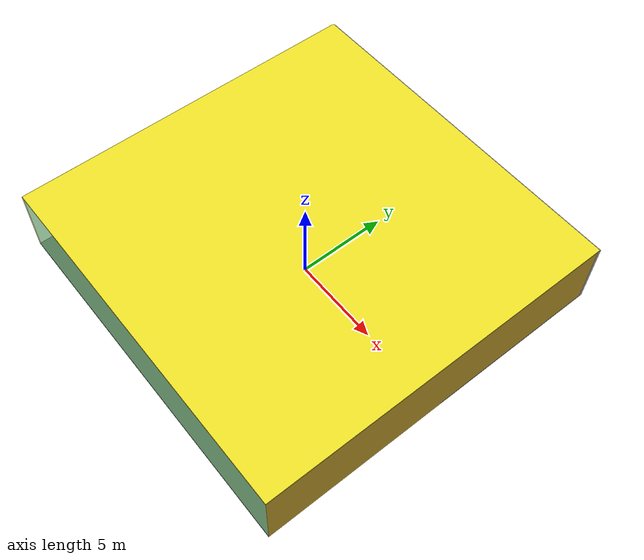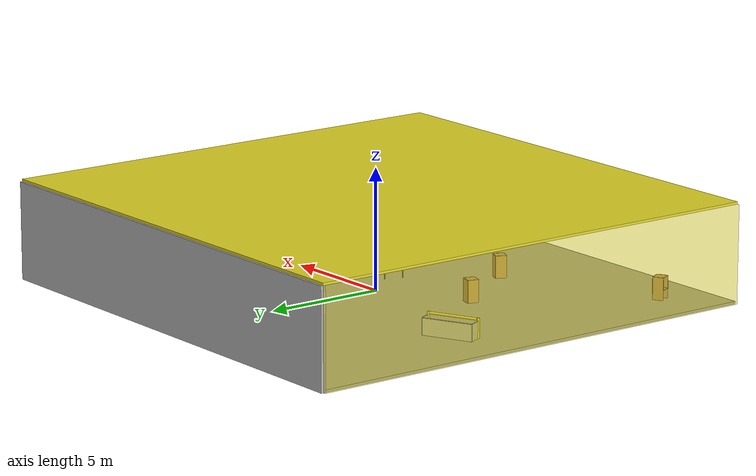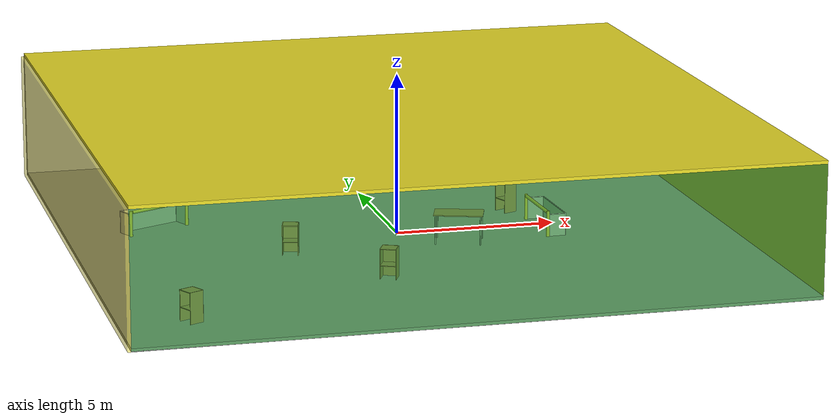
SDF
<sdf version="1.4">
 <world name="default">
  <physics type="ode">
   <max_step_size>0.001</max_step_size>
   <real_time_factor>1</real_time_factor>
   <real_time_update_rate>1000</real_time_update_rate>
   <gravity>0 0 -9.8</gravity>
  </physics>
  <scene><ambient>0.4 0.4 0.4 1</ambient><background>0.7 0.7 0.7 1</background><shadows>1</shadows></scene>
  <model name="Surrounding">
   <static>1</static>
   <link name="Ceiling">
    <collision name="Ceiling_Collision"><geometry><box><size>20 20 0.1</size></box></geometry></collision>
    <visual name="Ceiling_Visual">
     <geometry><box><size>20 20 0.1</size></box></geometry>
     <material>
      <script><uri>file://media/materials/scripts/gazebo.material</uri><name>Gazebo/Yellow</name></script>
     </material>
    </visual>
    <pose>0 0 4.05 0 0 0</pose>
   </link>
   <link name="Wall_South">
    <collision name="Wall_South_Collision">
     <geometry><box><size>20 0 4</size></box></geometry>
     <pose>0 0 2 0 -0 0</pose>
    </collision>
    <visual name="Wall_South_Visual">
     <pose>0 0 2 0 -0 0</pose>
     <geometry><box><size>20 0 4</size></box></geometry>
     <material>
      <script><uri>file://media/materials/scripts/gazebo.material</uri><name>Gazebo/GreenTransparent</name></script>
     </material>
    </visual>
    <velocity_decay><linear>0</linear><angular>0</angular></velocity_decay>
    <pose>0 -10 0 0 -0 0</pose>
   </link>
   <link name="Wall_East">
    <collision name="Wall_21_Collision">
     <geometry><box><size>20 0 4</size></box></geometry>
     <pose>0 0 2 0 -0 0</pose>
    </collision>
    <visual name="Wall_21_Visual">
     <pose>0 0 2 0 -0 0</pose>
     <geometry><box><size>20 0 4</size></box></geometry>
     <material>
      <script><uri>file://media/materials/scripts/gazebo.material</uri><name>Gazebo/Gold</name></script>
     </material>
    </visual>
    <velocity_decay><linear>0</linear><angular>0</angular></velocity_decay>
    <pose>10 0 0 0 -0 1.5708</pose>
   </link>
   <link name="Wall_North">
    <collision name="Wall_22_Collision">
     <geometry><box><size>20 0.2 4</size></box></geometry>
     <pose>0 0 2 0 -0 0</pose>
    </collision>
    <visual name="Wall_22_Visual">
     <pose>0 0 2 0 -0 0</pose>
     <geometry><box><size>20 0.2 4</size></box></geometry>
     <material>
      <script><uri>file://media/materials/scripts/gazebo.material</uri><name>Gazebo/LightOff</name></script>
     </material>
    </visual>
    <velocity_decay><linear>0</linear><angular>0</angular></velocity_decay>
    <pose>0 10 0 0 -0 0</pose>
   </link>
   <link name="Wall_West">
    <collision name="Wall_23_Collision">
     <geometry><box><size>20 0.2 4</size></box></geometry>
     <pose>0 0 2 0 -0 0</pose>
    </collision>
    <visual name="Wall_23_Visual">
     <pose>0 0 2 0 -0 0</pose>
     <geometry><box><size>20 0.2 4</size></box></geometry>
     <material>
      <script>
       <uri>file://media/materials/scripts/gazebo.material</uri>
       <name>Gazebo/YellowTransparent</name>
      </script>
     </material>
    </visual>
    <velocity_decay><linear>0</linear><angular>0</angular></velocity_decay>
    <pose>-10 0 0 0 0 -1.5708</pose>
   </link>
   <link name="Ground_link">
    <collision name="collision">
     <pose>0 0 .05 0 -0 0</pose>
     <geometry><box><size>20 20 0.1</size></box></geometry>
    </collision>
    <visual name="visual">
     <pose>0 0 .05 0 -0 0</pose>
     <geometry><box><size>20 20 0.1</size></box></geometry>
     <material>
      <script><uri>file://media/materials/scripts/gazebo.material</uri><name>Gazebo/Grey</name></script>
     </material>
    </visual>
   </link>
   <static>1</static>
  </model>
  <spherical_coordinates>
   <surface_model>EARTH_WGS84</surface_model>
   <latitude_deg>0</latitude_deg>
   <longitude_deg>0</longitude_deg>
   <elevation>0</elevation>
   <heading_deg>0</heading_deg>
  </spherical_coordinates>
  <light name="lightball_0" type="diffuse">
   <diffuse>0.8 0.8 0.8 1</diffuse>
   <specular>0.2 0.2 0.2 1</specular>
   <attenuation>
    <range>100</range>
    <constant>0.7</constant>
    <linear>0.01</linear>
    <quadratic>0.001</quadratic>
   </attenuation>
   <direction>-0.5 0.1 -0.9</direction>
   <pose>1.61367905368 -8.44411802373 2.08262815513 0 0 0</pose>
  </light>
  <light name="lightball_1" type="diffuse">
   <diffuse>0.8 0.8 0.8 1</diffuse>
   <specular>0.2 0.2 0.2 1</specular>
   <attenuation>
    <range>100</range>
    <constant>0.7</constant>
    <linear>0.01</linear>
    <quadratic>0.001</quadratic>
   </attenuation>
   <direction>-0.5 0.1 -0.9</direction>
   <pose>-3.06064737393 -8.38424781398 1.38764146005 0 0 0</pose>
  </light>
  <light name="lightball_2" type="diffuse">
   <diffuse>0.8 0.8 0.8 1</diffuse>
   <specular>0.2 0.2 0.2 1</specular>
   <attenuation>
    <range>100</range>
    <constant>0.7</constant>
    <linear>0.01</linear>
    <quadratic>0.001</quadratic>
   </attenuation>
   <direction>-0.5 0.1 -0.9</direction>
   <pose>4.85331386894 -4.20926997704 1.16689730587 0 0 0</pose>
  </light>
  <include><uri>model://cabinet</uri><pose>-7.93885318046 -7.91793640302 0 0 0 0.462290243751</pose></include>
  <include>
   <uri>model://robocup_3Dsim_goal</uri>
   <pose>-7.09793323254 1.73242145158 0 0 0 2.01584505297</pose>
  </include>
  <include><uri>model://cabinet</uri><pose>-3.75575143049 -1.80350942023 0 0 0 1.30244289925</pose></include>
  <include><uri>model://cabinet</uri><pose>-1.53708742309 -5.05439735908 0 0 0 1.12976063772</pose></include>
  <include><uri>model://table</uri><pose>1.47713639687 -1.75585634566 0 0 0 2.80856175532</pose></include>
  <include>
   <uri>model://robocup_3Dsim_goal</uri>
   <pose>4.23767390705 -0.818954549543 0 0 0 0.0323012505457</pose>
  </include>
  <include><uri>model://cabinet</uri><pose>3.86799530435 1.3519523886 0 0 0 0.386806257531</pose></include>
 </world>
</sdf>

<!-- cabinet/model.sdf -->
<sdf version="1.5">
  <model name="cabinet">
    <static>true</static>
    <link name="cabinet_bottom_plate">
      <inertial>
        <pose>0 0 -1 0 0 0</pose>
        <inertia>
          <ixx>2.050000</ixx>
          <ixy>0</ixy>
          <ixz>0</ixz>
          <iyy>2.050000</iyy>
          <iyz>0</iyz>
          <izz>2.050000</izz>
        </inertia>
        <mass>25.000000</mass>
      </inertial>
      <collision name="cabinet_bottom_plate_geom">
        <pose>0 0 0.010000 0 0 0</pose>
        <geometry>
          <box>
            <size>0.450000 0.450000 0.020000</size>
          </box>
        </geometry>
      </collision>
      <visual name="cabinet_bottom_plate_geom_visual">
        <pose>0 0 0.010000 0 0 0</pose>
        <geometry>
          <box>
            <size>0.450000 0.450000 0.020000</size>
          </box>
        </geometry>
        <material>
          <script>
            <uri>model://media/materials/scripts/gazebo.material</uri>
            <name>Gazebo/Wood</name>
          </script>
        </material>
      </visual>
      <collision name="cabinet_bottom_plate_geom_cabinet_back_plate">
        <pose>0.235000 0 0.510000 0 0 0</pose>
        <geometry>
          <box>
            <size>0.020000 0.450000 1.020000</size>
          </box>
        </geometry>
      </collision>
      <visual name="cabinet_bottom_plate_geom_cabinet_back_plate_visual">
        <pose>0.235000 0 0.510000 0 0 0</pose>
        <geometry>
          <box>
            <size>0.020000 0.450000 1.020000</size>
          </box>
        </geometry>
        <material>
          <script>
            <uri>model://media/materials/scripts/gazebo.material</uri>
            <name>Gazebo/Wood</name>
          </script>
        </material>
      </visual>
      <collision name="cabinet_bottom_plate_geom_cabinet_left_plate">
        <pose>0 0.235000 0.510000 0 0 0</pose>
        <geometry>
          <box>
            <size>0.450000 0.020000 1.020000</size>
          </box>
        </geometry>
      </collision>
      <visual name="cabinet_bottom_plate_geom_cabinet_left_plate_visual">
        <pose>0 0.235000 0.510000 0 0 0</pose>
        <geometry>
          <box>
            <size>0.450000 0.020000 1.020000</size>
          </box>
        </geometry>
        <material>
          <script>
            <uri>model://media/materials/scripts/gazebo.material</uri>
            <name>Gazebo/Wood</name>
          </script>
        </material>
      </visual>
      <collision name="cabinet_bottom_plate_geom_cabinet_middle_plate">
        <pose>0 0 0.510000 0 0 0</pose>
        <geometry>
          <box>
            <size>0.450000 0.450000 0.020000</size>
          </box>
        </geometry>
      </collision>
      <visual name="cabinet_bottom_plate_geom_cabinet_middle_plate_visual">
        <pose>0 0 0.510000 0 0 0</pose>
        <geometry>
          <box>
            <size>0.450000 0.450000 0.020000</size>
          </box>
        </geometry>
        <material>
          <script>
            <uri>model://media/materials/scripts/gazebo.material</uri>
            <name>Gazebo/Wood</name>
          </script>
        </material>
      </visual>
      <collision name="cabinet_bottom_plate_geom_cabinet_right_plate">
        <pose>0 -0.235000 0.510000 0 0 0</pose>
        <geometry>
          <box>
            <size>0.450000 0.020000 1.020000</size>
          </box>
        </geometry>
      </collision>
      <visual name="cabinet_bottom_plate_geom_cabinet_right_plate_visual">
        <pose>0 -0.235000 0.510000 0 0 0</pose>
        <geometry>
          <box>
            <size>0.450000 0.020000 1.020000</size>
          </box>
        </geometry>
        <material>
          <script>
            <uri>model://media/materials/scripts/gazebo.material</uri>
            <name>Gazebo/Wood</name>
          </script>
        </material>
      </visual>
      <collision name="cabinet_bottom_plate_geom_cabinet_top_plate">
        <pose>0 0 1.010000 0 0 0</pose>
        <geometry>
          <box>
            <size>0.450000 0.450000 0.020000</size>
          </box>
        </geometry>
      </collision>
      <visual name="cabinet_bottom_plate_geom_cabinet_top_plate_visual">
        <pose>0 0 1.010000 0 0 0</pose>
        <geometry>
          <box>
            <size>0.450000 0.450000 0.020000</size>
          </box>
        </geometry>
        <material>
          <script>
            <uri>model://media/materials/scripts/gazebo.material</uri>
            <name>Gazebo/Wood</name>
          </script>
        </material>
      </visual>
    </link>
  </model>
</sdf>

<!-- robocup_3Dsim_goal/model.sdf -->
<sdf version="1.5">
  <model name="robocup_3d_goal">
    <static>true</static>
    <link name="left_post">
      <pose>0 1.05 0.45 0 0 0</pose>
      <collision name="collision">
        <geometry>
          <cylinder>
            <radius>0.05</radius>
            <length>0.9</length>
          </cylinder>
        </geometry>
      </collision>
      <visual name="visual">
        <geometry>
          <cylinder>
            <radius>0.05</radius>
            <length>0.9</length>
          </cylinder>
        </geometry>
        <material>
          <script>
            <uri>file://media/materials/scripts/gazebo.material</uri>
            <name>Gazebo/ZincYellow</name>
          </script>
        </material>
      </visual>
    </link>
    <link name="left_support_horiz_lower">
      <pose>0.30 1.05 0.01 0 0 0</pose>
      <collision name="collision">
        <geometry>
          <box>
            <size>0.50 0.02 0.02</size>
          </box>
        </geometry>
      </collision>
      <visual name="visual">
        <geometry>
          <box>
            <size>0.50 0.02 0.02</size>
          </box>
        </geometry>
        <material>
          <script>
            <uri>file://media/materials/scripts/gazebo.material</uri>
            <name>Gazebo/White</name>
          </script>
        </material>
      </visual>
    </link>
    <link name="left_support_horiz_upper">
      <pose>0.30 1.05 0.79 0 0 0</pose>
      <collision name="collision">
        <geometry>
          <box>
            <size>0.50 0.02 0.02</size>
          </box>
        </geometry>
      </collision>
      <visual name="visual">
        <geometry>
          <box>
            <size>0.50 0.02 0.02</size>
          </box>
        </geometry>
        <material>
          <script>
            <uri>file://media/materials/scripts/gazebo.material</uri>
            <name>Gazebo/White</name>
          </script>
        </material>
      </visual>
    </link>
    <link name="left_support_vertical">
      <pose>0.56 1.05 0.4 0 1.5708 0</pose>
      <collision name="collision">
        <geometry>
          <box>
            <size>0.80 0.02 0.02</size>
          </box>
        </geometry>
      </collision>
      <visual name="visual">
        <geometry>
          <box>
            <size>0.80 0.02 0.02</size>
          </box>
        </geometry>
        <material>
          <script>
            <uri>file://media/materials/scripts/gazebo.material</uri>
            <name>Gazebo/White</name>
          </script>
        </material>
      </visual>
    </link>
    <link name="right_support_horiz_lower">
      <pose>0.30 -1.05 0.01 0 0 0</pose>
      <collision name="collision">
        <geometry>
          <box>
            <size>0.50 0.02 0.02</size>
          </box>
        </geometry>
      </collision>
      <visual name="visual">
        <geometry>
          <box>
            <size>0.50 0.02 0.02</size>
          </box>
        </geometry>
        <material>
          <script>
            <uri>file://media/materials/scripts/gazebo.material</uri>
            <name>Gazebo/White</name>
          </script>
        </material>
      </visual>
    </link>
    <link name="right_support_horiz_upper">
      <pose>0.30 -1.05 0.79 0 0 0</pose>
      <collision name="collision">
        <geometry>
          <box>
            <size>0.50 0.02 0.02</size>
          </box>
        </geometry>
      </collision>
      <visual name="visual">
        <geometry>
          <box>
            <size>0.50 0.02 0.02</size>
          </box>
        </geometry>
        <material>
          <script>
            <uri>file://media/materials/scripts/gazebo.material</uri>
            <name>Gazebo/White</name>
          </script>
        </material>
      </visual>
    </link>
    <link name="right_support_vertical">
      <pose>0.56 -1.05 0.4 0 1.5708 0</pose>
      <collision name="collision">
        <geometry>
          <box>
            <size>0.80 0.02 0.02</size>
          </box>
        </geometry>
      </collision>
      <visual name="visual">
        <geometry>
          <box>
            <size>0.80 0.02 0.02</size>
          </box>
        </geometry>
        <material>
          <script>
            <uri>file://media/materials/scripts/gazebo.material</uri>
            <name>Gazebo/White</name>
          </script>
        </material>
      </visual>
    </link>
    <link name="center_support_horiz_lower">
      <pose>0.56 0 0.01 0 1.5708 0</pose>
      <collision name="collision">
        <geometry>
          <box>
            <size>0.02 2.08 0.02</size>
          </box>
        </geometry>
      </collision>
      <visual name="visual">
        <geometry>
          <box>
            <size>0.02 2.08 0.02</size>
          </box>
        </geometry>
        <material>
          <script>
            <uri>file://media/materials/scripts/gazebo.material</uri>
            <name>Gazebo/White</name>
          </script>
        </material>
      </visual>
    </link>
    <link name="center_support_horiz_upper">
      <pose>0.56 0 0.79 0 1.5708 0</pose>
      <collision name="collision">
        <geometry>
          <box>
            <size>0.02 2.08 0.02</size>
          </box>
        </geometry>
      </collision>
      <visual name="visual">
        <geometry>
          <box>
            <size>0.02 2.08 0.02</size>
          </box>
        </geometry>
        <material>
          <script>
            <uri>file://media/materials/scripts/gazebo.material</uri>
            <name>Gazebo/White</name>
          </script>
        </material>
      </visual>
    </link>
    <link name="right_post">
      <pose>0 -1.05 0.45 0 0 0</pose>
      <collision name="collision">
        <geometry>
          <cylinder>
            <radius>0.05</radius>
            <length>0.9</length>
          </cylinder>
        </geometry>
      </collision>
      <visual name="visual">
        <geometry>
          <cylinder>
            <radius>0.05</radius>
            <length>0.9</length>
          </cylinder>
        </geometry>
        <material>
          <script>
            <uri>file://media/materials/scripts/gazebo.material</uri>
            <name>Gazebo/ZincYellow</name>
          </script>
        </material>
      </visual>
    </link>
    <link name="crossbar">
      <pose>0 0 0.85 1.57 1.57 0</pose>
      <collision name="collision">
        <geometry>
          <cylinder>
            <radius>0.05</radius>
            <length>2.0</length>
          </cylinder>
        </geometry>
      </collision>
      <visual name="visual">
        <geometry>
          <cylinder>
            <radius>0.05</radius>
            <length>2.0</length>
          </cylinder>
        </geometry>
        <material>
          <script>
            <uri>file://media/materials/scripts/gazebo.material</uri>
            <name>Gazebo/ZincYellow</name>
          </script>
        </material>
      </visual>
    </link>
    <link name="center_net">
      <pose>0.56 0 0.40 0 0 0</pose>
      <collision name="collision">
        <geometry>
          <box>
            <size>0.01 2.1 0.80</size>
          </box>
        </geometry>
      </collision>
      <visual name="visual">
        <geometry>
          <box>
            <size>0.01 2.1 0.80</size>
          </box>
        </geometry>
        <material>
          <script>
            <uri>model://../model_source/models/robocup09_spl_field/materials/scripts/</uri>
            <uri>model://../model_source/models/robocup09_spl_field/materials/textures/</uri>
            <name>RoboCup/Net</name>
          </script>
        </material>
      </visual>
    </link>
    <link name="left_net">
      <pose>0.30 1.05 0.40 0 0 0</pose>
      <collision name="collision">
        <geometry>
          <box>
            <size>0.50 0.01 0.76</size>
          </box>
        </geometry>
      </collision>
      <visual name="visual">
        <geometry>
          <box>
            <size>0.50 0.01 0.76</size>
          </box>
        </geometry>
        <material>
          <script>
            <uri>model://../model_source/models/robocup09_spl_field/materials/scripts/</uri>
            <uri>model://../model_source/models/robocup09_spl_field/materials/textures/</uri>
            <name>RoboCup/Net</name>
          </script>
        </material>
      </visual>
    </link>
    <link name="right_net">
      <pose>0.30 -1.05 0.40 0 0 0</pose>
      <collision name="collision">
        <geometry>
          <box>
            <size>0.50 0.01 0.76</size>
          </box>
        </geometry>
      </collision>
      <visual name="visual">
        <geometry>
          <box>
            <size>0.50 0.01 0.76</size>
          </box>
        </geometry>
        <material>
          <script>
            <uri>model://../model_source/models/robocup09_spl_field/materials/scripts/</uri>
            <uri>model://../model_source/models/robocup09_spl_field/materials/textures/</uri>
            <name>RoboCup/Net</name>
          </script>
        </material>
      </visual>
    </link>
  </model>
</sdf>

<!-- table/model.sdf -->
<sdf version="1.5">
  <model name="table">
    <static>true</static>
    <link name="link">
      <collision name="surface">
        <pose>0 0 1.0 0 0 0</pose>
        <geometry>
          <box>
            <size>1.5 0.8 0.03</size>
          </box>
        </geometry>
        <surface>
          <friction>
            <ode>
              <mu>0.6</mu>
              <mu2>0.6</mu2>
            </ode>
          </friction>
        </surface>
      </collision>
      <visual name="visual1">
        <pose>0 0 1.0 0 0 0</pose>
        <geometry>
          <box>
            <size>1.5 0.8 0.03</size>
          </box>
        </geometry>
        <material>
          <script>
            <uri>model://media/materials/scripts/gazebo.material</uri>
            <name>Gazebo/Wood</name>
          </script>
        </material>
      </visual>
      <collision name="front_left_leg">
        <pose>0.68 0.38 0.5 0 0 0</pose>
        <geometry>
          <cylinder>
            <radius>0.02</radius>
            <length>1.0</length>
          </cylinder>
        </geometry>
      </collision>
      <visual name="front_left_leg">
        <pose>0.68 0.38 0.5 0 0 0</pose>
        <geometry>
          <cylinder>
            <radius>0.02</radius>
            <length>1.0</length>
          </cylinder>
        </geometry>
        <material>
          <script>
            <uri>model://media/materials/scripts/gazebo.material</uri>
            <name>Gazebo/Grey</name>
          </script>
        </material>
      </visual>
      <collision name="front_right_leg">
        <pose>0.68 -0.38 0.5 0 0 0</pose>
        <geometry>
          <cylinder>
            <radius>0.02</radius>
            <length>1.0</length>
          </cylinder>
        </geometry>
      </collision>
      <visual name="front_right_leg">
        <pose>0.68 -0.38 0.5 0 0 0</pose>
        <geometry>
          <cylinder>
            <radius>0.02</radius>
            <length>1.0</length>
          </cylinder>
        </geometry>
        <material>
          <script>
            <uri>model://media/materials/scripts/gazebo.material</uri>
            <name>Gazebo/Grey</name>
          </script>
        </material>
      </visual>
      <collision name="back_right_leg">
        <pose>-0.68 -0.38 0.5 0 0 0</pose>
        <geometry>
          <cylinder>
            <radius>0.02</radius>
            <length>1.0</length>
          </cylinder>
        </geometry>
      </collision>
      <visual name="back_right_leg">
        <pose>-0.68 -0.38 0.5 0 0 0</pose>
        <geometry>
          <cylinder>
            <radius>0.02</radius>
            <length>1.0</length>
          </cylinder>
        </geometry>
        <material>
          <script>
            <uri>model://media/materials/scripts/gazebo.material</uri>
            <name>Gazebo/Grey</name>
          </script>
        </material>
      </visual>
      <collision name="back_left_leg">
        <pose>-0.68 0.38 0.5 0 0 0</pose>
        <geometry>
          <cylinder>
            <radius>0.02</radius>
            <length>1.0</length>
          </cylinder>
        </geometry>
      </collision>
      <visual name="back_left_leg">
        <pose>-0.68 0.38 0.5 0 0 0</pose>
        <geometry>
          <cylinder>
            <radius>0.02</radius>
            <length>1.0</length>
          </cylinder>
        </geometry>
        <material>
          <script>
            <uri>model://media/materials/scripts/gazebo.material</uri>
            <name>Gazebo/Grey</name>
          </script>
        </material>
      </visual>
    </link>
  </model>
</sdf>
